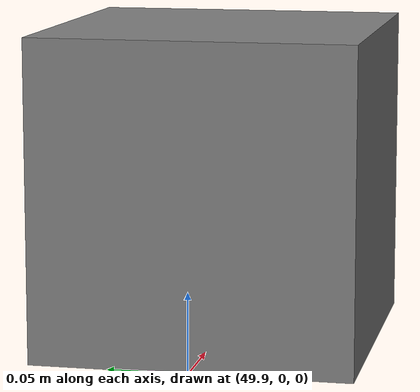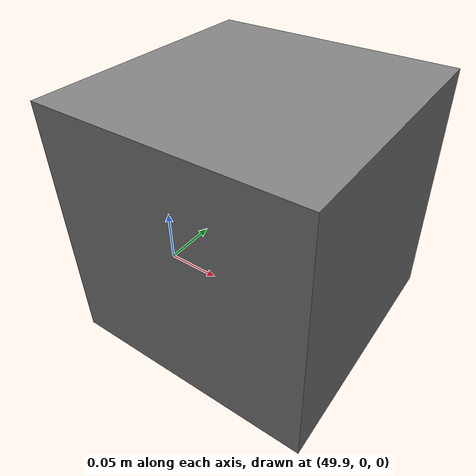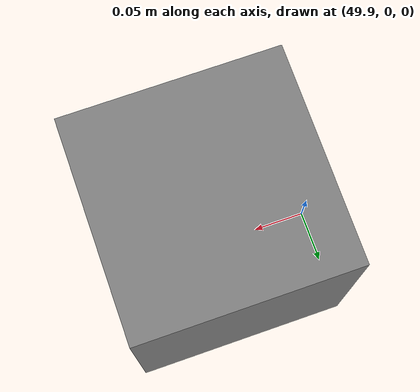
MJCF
<!-- GENERATED by training/tools/build_mjcf.py from SourceArt/test_MATT_Avaturn.glb. Do not edit. -->
<mujoco model="cube">
  <compiler angle="degree" autolimits="true" />
  <worldbody>
    <body name="cube" pos="50 0 0.1">
      <inertial pos="0 0 0" mass="2" diaginertia="0.01333333 0.01333333 0.01333333" />
      <freejoint name="cube_free" />
      <geom name="cube_geom" type="box" size="0.1 0.1 0.1" contype="65535" conaffinity="65535" condim="3" friction="0.8 0.005 0.0001" />
    </body>
  </worldbody>
</mujoco>
